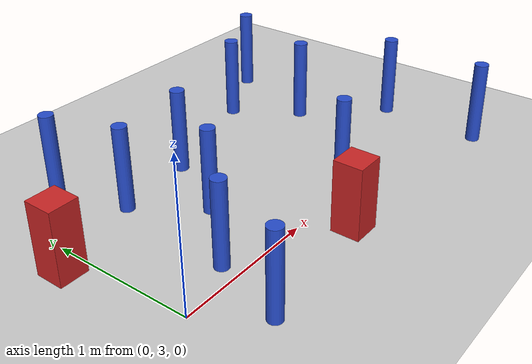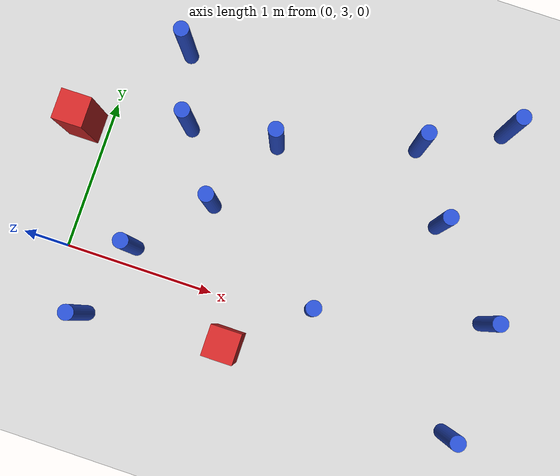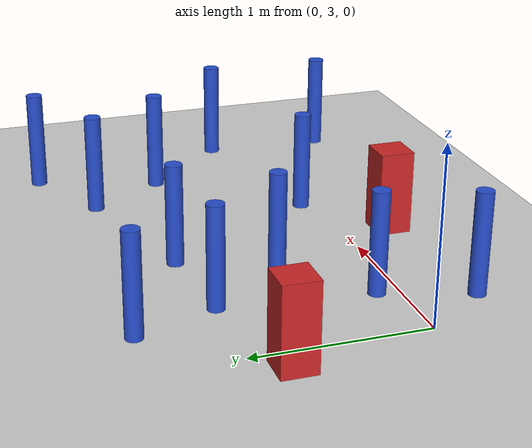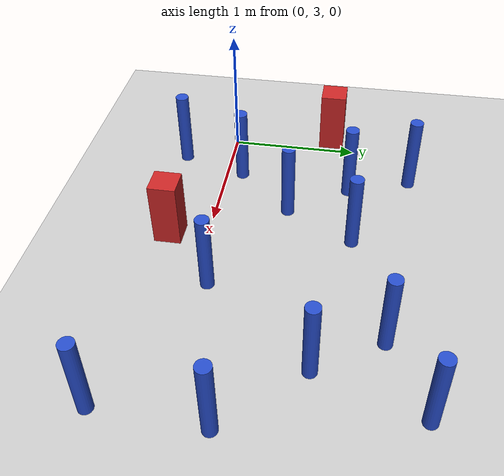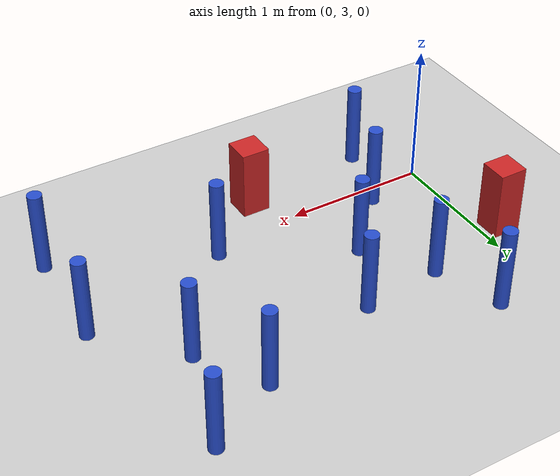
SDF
<sdf version="1.6">
 <world name="default">
  <model name="ground_plane">
   <static>1</static>
   <link name="link">
    <collision name="collision">
     <geometry><plane><normal>0 0 1</normal><size>100 100</size></plane></geometry>
     <surface><friction><ode><mu>100</mu><mu2>50</mu2></ode></friction></surface>
    </collision>
    <visual name="visual">
     <cast_shadows>0</cast_shadows>
     <geometry><plane><normal>0 0 1</normal><size>100 100</size></plane></geometry>
     <material>
      <ambient>1.0 1.0 1.0 1.0</ambient>
      <diffuse>0.8 0.8 0.8 1.0</diffuse>
      <specular>0.01 0.01 0.01 1.000000</specular>
     </material>
    </visual>
   </link>
  </model>
  <model name="pole_obstacle1">
   <static>true</static>
   <pose>1.99328007282 4.33544630047 7.38925637345e-09 -8.471706928e-08 1.24976765202e-08 -1.7451309301e-07</pose>
   <link name="link">
    <pose>0 0 0.3 0 -0 0</pose>
    <inertial>
     <mass>1</mass>
     <inertia><ixx>0.145833</ixx><ixy>0</ixy><ixz>0</ixz><iyy>0.145833</iyy><iyz>0</iyz><izz>0.125</izz></inertia>
    </inertial>
    <collision name="collision">
     <geometry><cylinder><radius>0.05</radius><length>.6</length></cylinder></geometry>
    </collision>
    <visual name="visual">
     <geometry><cylinder><radius>0.05</radius><length>.6</length></cylinder></geometry>
     <material>
      <script><name>Gazebo/Blue</name><uri>file://media/materials/scripts/gazebo.material</uri></script>
     </material>
    </visual>
   </link>
  </model>
  <model name="pole_obstacle32">
   <static>true</static>
   <pose>1.66450686175 3.10806377922 7.38925637345e-09 -8.47170692799e-08 1.24976765053e-08 -1.74513093017e-07</pose>
   <link name="link">
    <pose>0 0 0.3 0 -0 0</pose>
    <inertial>
     <mass>1</mass>
     <inertia><ixx>0.145833</ixx><ixy>0</ixy><ixz>0</ixz><iyy>0.145833</iyy><iyz>0</iyz><izz>0.125</izz></inertia>
    </inertial>
    <collision name="collision">
     <geometry><cylinder><radius>0.05</radius><length>.6</length></cylinder></geometry>
    </collision>
    <visual name="visual">
     <geometry><cylinder><radius>0.05</radius><length>.6</length></cylinder></geometry>
     <material>
      <script><name>Gazebo/Blue</name><uri>file://media/materials/scripts/gazebo.material</uri></script>
     </material>
    </visual>
   </link>
  </model>
  <model name="pole_obstacle36">
   <static>true</static>
   <pose>0.52809508491 3.99513970842 7.38925637345e-09 -8.47170692799e-08 1.24976765006e-08 -1.7451309302e-07</pose>
   <link name="link">
    <pose>0 0 0.3 0 -0 0</pose>
    <inertial>
     <mass>1</mass>
     <inertia><ixx>0.145833</ixx><ixy>0</ixy><ixz>0</ixz><iyy>0.145833</iyy><iyz>0</iyz><izz>0.125</izz></inertia>
    </inertial>
    <collision name="collision">
     <geometry><cylinder><radius>0.05</radius><length>.6</length></cylinder></geometry>
    </collision>
    <visual name="visual">
     <geometry><cylinder><radius>0.05</radius><length>.6</length></cylinder></geometry>
     <material>
      <script><name>Gazebo/Blue</name><uri>file://media/materials/scripts/gazebo.material</uri></script>
     </material>
    </visual>
   </link>
  </model>
  <model name="pole_obstacle81">
   <static>true</static>
   <pose>2.74621569835 3.37095253552 7.38925637345e-09 -8.47170692798e-08 1.24976764939e-08 -1.74513093025e-07</pose>
   <link name="link">
    <pose>0 0 0.3 0 -0 0</pose>
    <inertial>
     <mass>1</mass>
     <inertia><ixx>0.145833</ixx><ixy>0</ixy><ixz>0</ixz><iyy>0.145833</iyy><iyz>0</iyz><izz>0.125</izz></inertia>
    </inertial>
    <collision name="collision">
     <geometry><cylinder><radius>0.05</radius><length>.6</length></cylinder></geometry>
    </collision>
    <visual name="visual">
     <geometry><cylinder><radius>0.05</radius><length>.6</length></cylinder></geometry>
     <material>
      <script><name>Gazebo/Blue</name><uri>file://media/materials/scripts/gazebo.material</uri></script>
     </material>
    </visual>
   </link>
  </model>
  <model name="pole_obstacle96">
   <static>true</static>
   <pose>2.71603093209 2.62401595281 7.38925637345e-09 -8.47170692798e-08 1.24976764939e-08 -1.74513093025e-07</pose>
   <link name="link">
    <pose>0 0 0.3 0 -0 0</pose>
    <inertial>
     <mass>1</mass>
     <inertia><ixx>0.145833</ixx><ixy>0</ixy><ixz>0</ixz><iyy>0.145833</iyy><iyz>0</iyz><izz>0.125</izz></inertia>
    </inertial>
    <collision name="collision">
     <geometry><cylinder><radius>0.05</radius><length>.6</length></cylinder></geometry>
    </collision>
    <visual name="visual">
     <geometry><cylinder><radius>0.05</radius><length>.6</length></cylinder></geometry>
     <material>
      <script><name>Gazebo/Blue</name><uri>file://media/materials/scripts/gazebo.material</uri></script>
     </material>
    </visual>
   </link>
  </model>
  <model name="pole_obstacle98">
   <static>true</static>
   <pose>0.271782604323 2.61920614039 7.38925637345e-09 -8.471706928e-08 1.24976765078e-08 -1.74513093017e-07</pose>
   <link name="link">
    <pose>0 0 0.3 0 -0 0</pose>
    <inertial>
     <mass>1</mass>
     <inertia><ixx>0.145833</ixx><ixy>0</ixy><ixz>0</ixz><iyy>0.145833</iyy><iyz>0</iyz><izz>0.125</izz></inertia>
    </inertial>
    <collision name="collision">
     <geometry><cylinder><radius>0.05</radius><length>.6</length></cylinder></geometry>
    </collision>
    <visual name="visual">
     <geometry><cylinder><radius>0.05</radius><length>.6</length></cylinder></geometry>
     <material>
      <script><name>Gazebo/Blue</name><uri>file://media/materials/scripts/gazebo.material</uri></script>
     </material>
    </visual>
   </link>
  </model>
  <model name="pole_obstacle108">
   <static>true</static>
   <pose>0.83301651226 3.55359654354 7.38925637345e-09 -8.47170692799e-08 1.2497676509e-08 -1.74513093016e-07</pose>
   <link name="link">
    <pose>0 0 0.3 0 -0 0</pose>
    <inertial>
     <mass>1</mass>
     <inertia><ixx>0.145833</ixx><ixy>0</ixy><ixz>0</ixz><iyy>0.145833</iyy><iyz>0</iyz><izz>0.125</izz></inertia>
    </inertial>
    <collision name="collision">
     <geometry><cylinder><radius>0.05</radius><length>.6</length></cylinder></geometry>
    </collision>
    <visual name="visual">
     <geometry><cylinder><radius>0.05</radius><length>.6</length></cylinder></geometry>
     <material>
      <script><name>Gazebo/Blue</name><uri>file://media/materials/scripts/gazebo.material</uri></script>
     </material>
    </visual>
   </link>
  </model>
  <model name="pole_obstacle147">
   <static>true</static>
   <pose>2.27457025655 3.8860952235 7.38925637345e-09 -8.47170692798e-08 1.24976764939e-08 -1.74513093025e-07</pose>
   <link name="link">
    <pose>0 0 0.3 0 -0 0</pose>
    <inertial>
     <mass>1</mass>
     <inertia><ixx>0.145833</ixx><ixy>0</ixy><ixz>0</ixz><iyy>0.145833</iyy><iyz>0</iyz><izz>0.125</izz></inertia>
    </inertial>
    <collision name="collision">
     <geometry><cylinder><radius>0.05</radius><length>.6</length></cylinder></geometry>
    </collision>
    <visual name="visual">
     <geometry><cylinder><radius>0.05</radius><length>.6</length></cylinder></geometry>
     <material>
      <script><name>Gazebo/Blue</name><uri>file://media/materials/scripts/gazebo.material</uri></script>
     </material>
    </visual>
   </link>
  </model>
  <model name="pole_obstacle150">
   <static>true</static>
   <pose>1.10676502445 4.06251789575 7.38925637345e-09 -8.47170692799e-08 1.24976765033e-08 -1.74513093018e-07</pose>
   <link name="link">
    <pose>0 0 0.3 0 -0 0</pose>
    <inertial>
     <mass>1</mass>
     <inertia><ixx>0.145833</ixx><ixy>0</ixy><ixz>0</ixz><iyy>0.145833</iyy><iyz>0</iyz><izz>0.125</izz></inertia>
    </inertial>
    <collision name="collision">
     <geometry><cylinder><radius>0.05</radius><length>.6</length></cylinder></geometry>
    </collision>
    <visual name="visual">
     <geometry><cylinder><radius>0.05</radius><length>.6</length></cylinder></geometry>
     <material>
      <script><name>Gazebo/Blue</name><uri>file://media/materials/scripts/gazebo.material</uri></script>
     </material>
    </visual>
   </link>
  </model>
  <model name="pole_obstacle161">
   <static>true</static>
   <pose>2.50937883521 4.60758102123 7.38925637345e-09 -8.47170692798e-08 1.24976765033e-08 -1.74513093019e-07</pose>
   <link name="link">
    <pose>0 0 0.3 0 -0 0</pose>
    <inertial>
     <mass>1</mass>
     <inertia><ixx>0.145833</ixx><ixy>0</ixy><ixz>0</ixz><iyy>0.145833</iyy><iyz>0</iyz><izz>0.125</izz></inertia>
    </inertial>
    <collision name="collision">
     <geometry><cylinder><radius>0.05</radius><length>.6</length></cylinder></geometry>
    </collision>
    <visual name="visual">
     <geometry><cylinder><radius>0.05</radius><length>.6</length></cylinder></geometry>
     <material>
      <script><name>Gazebo/Blue</name><uri>file://media/materials/scripts/gazebo.material</uri></script>
     </material>
    </visual>
   </link>
  </model>
  <model name="square_post_obstacle167">
   <static>true</static>
   <pose>-0.14296501739 3.80944084457 1.91545236811e-07 -7.35059704564e-06 1.12565212e-07 2.39332434364e-05</pose>
   <link name="link">
    <pose>0 0 0.25 0 -0 0</pose>
    <inertial>
     <mass>100</mass>
     <inertia>
      <ixx>0.166667</ixx>
      <ixy>0</ixy>
      <ixz>0</ixz>
      <iyy>0.166667</iyy>
      <iyz>0</iyz>
      <izz>0.166667</izz>
     </inertia>
    </inertial>
    <collision name="collision"><geometry><box><size>.2 .2 .5</size></box></geometry></collision>
    <visual name="visual">
     <geometry><box><size>.2 .2 .5</size></box></geometry>
     <material>
      <script><name>Gazebo/Red</name><uri>file://media/materials/scripts/gazebo.material</uri></script>
     </material>
    </visual>
   </link>
  </model>
  <model name="square_post_obstacle208">
   <static>true</static>
   <pose>1.20508178754 2.72438369397 1.91545236811e-07 -7.35059704564e-06 1.12565212e-07 2.39332434364e-05</pose>
   <link name="link">
    <pose>0 0 0.25 0 -0 0</pose>
    <inertial>
     <mass>100</mass>
     <inertia>
      <ixx>0.166667</ixx>
      <ixy>0</ixy>
      <ixz>0</ixz>
      <iyy>0.166667</iyy>
      <iyz>0</iyz>
      <izz>0.166667</izz>
     </inertia>
    </inertial>
    <collision name="collision"><geometry><box><size>.2 .2 .5</size></box></geometry></collision>
    <visual name="visual">
     <geometry><box><size>.2 .2 .5</size></box></geometry>
     <material>
      <script><name>Gazebo/Red</name><uri>file://media/materials/scripts/gazebo.material</uri></script>
     </material>
    </visual>
   </link>
  </model>
  <model name="pole_obstacle217">
   <static>true</static>
   <pose>0.358510009575 4.46989002078 7.38925637345e-09 -8.471706928e-08 1.24976765079e-08 -1.74513093015e-07</pose>
   <link name="link">
    <pose>0 0 0.3 0 -0 0</pose>
    <inertial>
     <mass>1</mass>
     <inertia><ixx>0.145833</ixx><ixy>0</ixy><ixz>0</ixz><iyy>0.145833</iyy><iyz>0</iyz><izz>0.125</izz></inertia>
    </inertial>
    <collision name="collision">
     <geometry><cylinder><radius>0.05</radius><length>.6</length></cylinder></geometry>
    </collision>
    <visual name="visual">
     <geometry><cylinder><radius>0.05</radius><length>.6</length></cylinder></geometry>
     <material>
      <script><name>Gazebo/Blue</name><uri>file://media/materials/scripts/gazebo.material</uri></script>
     </material>
    </visual>
   </link>
  </model>
  <model name="pole_obstacle218">
   <static>true</static>
   <pose>0.438009009575 3.12675002078 7.38925637345e-09 -8.47170692793e-08 1.24976764469e-08 -1.74513093038e-07</pose>
   <link name="link">
    <pose>0 0 0.3 0 -0 0</pose>
    <inertial>
     <mass>1</mass>
     <inertia><ixx>0.145833</ixx><ixy>0</ixy><ixz>0</ixz><iyy>0.145833</iyy><iyz>0</iyz><izz>0.125</izz></inertia>
    </inertial>
    <collision name="collision">
     <geometry><cylinder><radius>0.05</radius><length>.6</length></cylinder></geometry>
    </collision>
    <visual name="visual">
     <geometry><cylinder><radius>0.05</radius><length>.6</length></cylinder></geometry>
     <material>
      <script><name>Gazebo/Blue</name><uri>file://media/materials/scripts/gazebo.material</uri></script>
     </material>
    </visual>
   </link>
  </model>
 </world>
</sdf>
